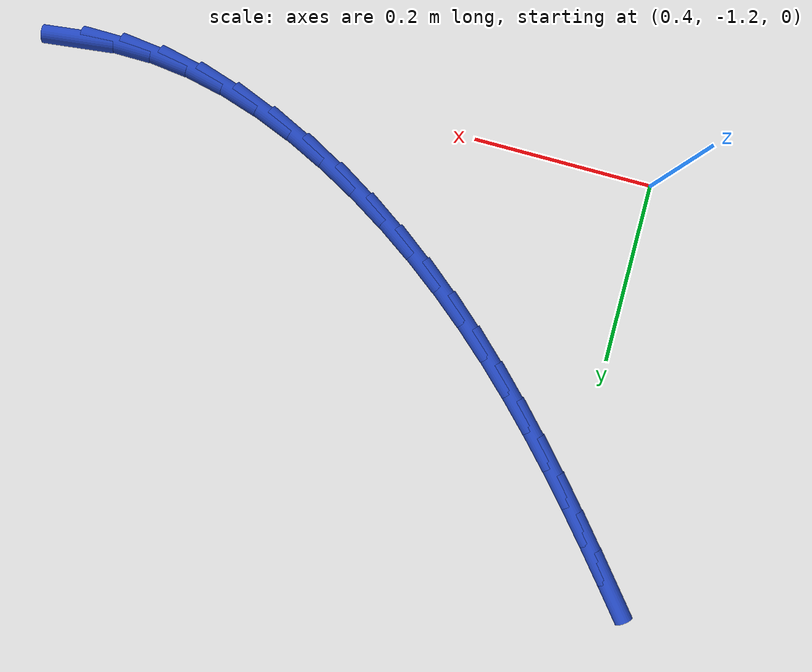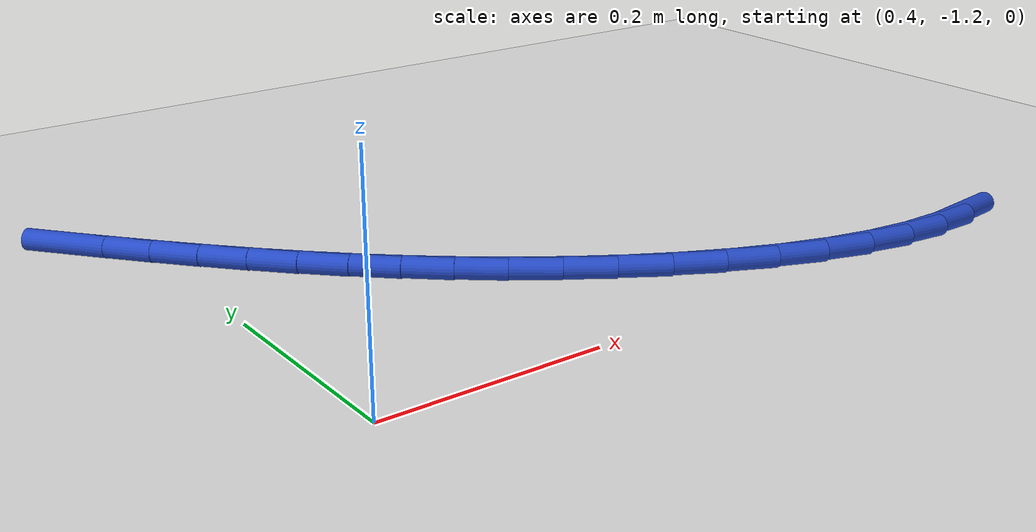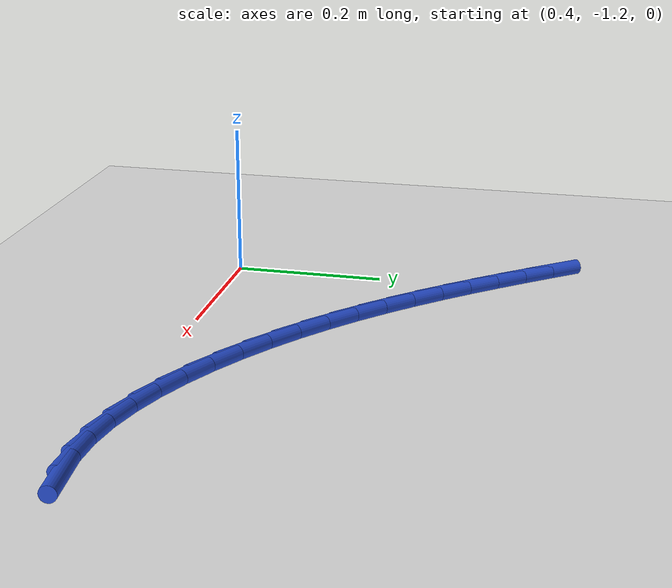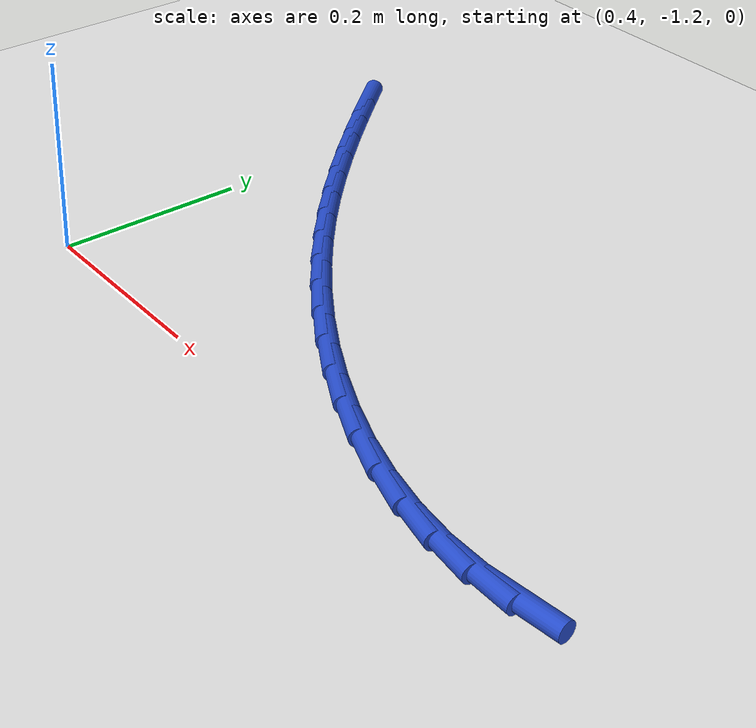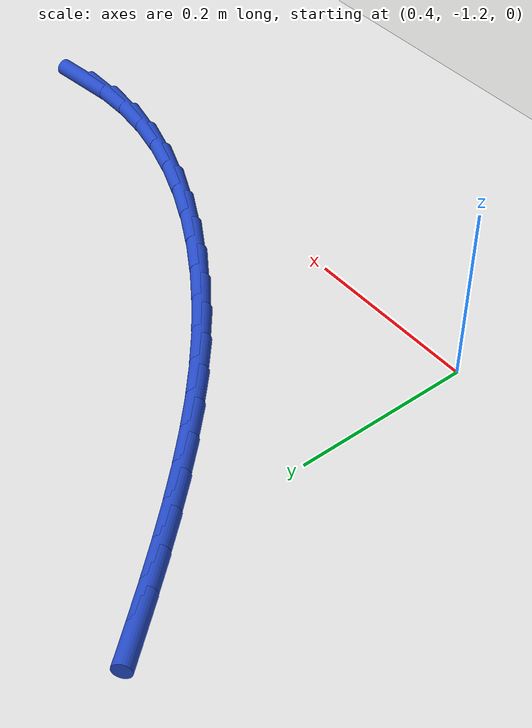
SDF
<sdf version="1.6">
 <world name="default">
  <model name="ground_plane">
   <static>1</static>
   <link name="link">
    <collision name="collision">
     <geometry><plane><normal>0 0 1</normal><size>100 100</size></plane></geometry>
     <surface><friction><ode><mu>100</mu><mu2>50</mu2></ode></friction></surface>
    </collision>
    <visual name="visual">
     <cast_shadows>0</cast_shadows>
     <geometry><plane><normal>0 0 1</normal><size>100 100</size></plane></geometry>
     <material>
      <script><uri>file://media/materials/scripts/gazebo.material</uri><name>Gazebo/WhiteGlow</name></script>
     </material>
    </visual>
   </link>
  </model>
  <model name="line">
   <link name="link_122">
    <pose>1.051353643007026 -1.192605715486204 0.01 0 1.57 0.11325673975671603</pose>
    <collision name="collision">
     <geometry><cylinder><radius>0.01</radius><length>0.08</length></cylinder></geometry>
    </collision>
    <visual name="visual">
     <material>
      <script><name>Gazebo/Blue</name><uri>file://media/materials/scripts/gazebo.material</uri></script>
     </material>
     <geometry><cylinder><radius>0.01</radius><length>0.08</length></cylinder></geometry>
    </visual>
   </link>
   <link name="link_123">
    <pose>1.0088203566418366 -1.197443599866201 0.01 0 1.57 -0.012909004410176127</pose>
    <collision name="collision">
     <geometry><cylinder><radius>0.01</radius><length>0.08</length></cylinder></geometry>
    </collision>
    <visual name="visual">
     <material>
      <script><name>Gazebo/Blue</name><uri>file://media/materials/scripts/gazebo.material</uri></script>
     </material>
     <geometry><cylinder><radius>0.01</radius><length>0.08</length></cylinder></geometry>
    </visual>
   </link>
   <link name="link_124">
    <pose>0.9655080422606135 -1.1968844499491333 0.01 0 1.57 -0.12635082770760625</pose>
    <collision name="collision">
     <geometry><cylinder><radius>0.01</radius><length>0.08</length></cylinder></geometry>
    </collision>
    <visual name="visual">
     <material>
      <script><name>Gazebo/Blue</name><uri>file://media/materials/scripts/gazebo.material</uri></script>
     </material>
     <geometry><cylinder><radius>0.01</radius><length>0.08</length></cylinder></geometry>
    </visual>
   </link>
   <link name="link_125">
    <pose>0.9216979448643812 -1.1913193616380249 0.01 0 1.57 -0.22517747321972656</pose>
    <collision name="collision">
     <geometry><cylinder><radius>0.01</radius><length>0.08</length></cylinder></geometry>
    </collision>
    <visual name="visual">
     <material>
      <script><name>Gazebo/Blue</name><uri>file://media/materials/scripts/gazebo.material</uri></script>
     </material>
     <geometry><cylinder><radius>0.01</radius><length>0.08</length></cylinder></geometry>
    </visual>
   </link>
   <link name="link_126">
    <pose>0.8777102852544838 -1.1812434538527654 0.01 0 1.57 -0.3109687670206483</pose>
    <collision name="collision">
     <geometry><cylinder><radius>0.01</radius><length>0.08</length></cylinder></geometry>
    </collision>
    <visual name="visual">
     <material>
      <script><name>Gazebo/Blue</name><uri>file://media/materials/scripts/gazebo.material</uri></script>
     </material>
     <geometry><cylinder><radius>0.01</radius><length>0.08</length></cylinder></geometry>
    </visual>
   </link>
   <link name="link_127">
    <pose>0.8338652842322672 -1.1671518455132457 0.01 0 1.57 -0.38564923800819434</pose>
    <collision name="collision">
     <geometry><cylinder><radius>0.01</radius><length>0.08</length></cylinder></geometry>
    </collision>
    <visual name="visual">
     <material>
      <script><name>Gazebo/Blue</name><uri>file://media/materials/scripts/gazebo.material</uri></script>
     </material>
     <geometry><cylinder><radius>0.01</radius><length>0.08</length></cylinder></geometry>
    </visual>
   </link>
   <link name="link_128">
    <pose>0.7904831625990756 -1.1495396555393558 0.01 0 1.57 -0.45114098690537335</pose>
    <collision name="collision">
     <geometry><cylinder><radius>0.01</radius><length>0.08</length></cylinder></geometry>
    </collision>
    <visual name="visual">
     <material>
      <script><name>Gazebo/Blue</name><uri>file://media/materials/scripts/gazebo.material</uri></script>
     </material>
     <geometry><cylinder><radius>0.01</radius><length>0.08</length></cylinder></geometry>
    </visual>
   </link>
   <link name="link_129">
    <pose>0.7478841411562536 -1.1289020028509866 0.01 0 1.57 -0.5092106275010904</pose>
    <collision name="collision">
     <geometry><cylinder><radius>0.01</radius><length>0.08</length></cylinder></geometry>
    </collision>
    <visual name="visual">
     <material>
      <script><name>Gazebo/Blue</name><uri>file://media/materials/scripts/gazebo.material</uri></script>
     </material>
     <geometry><cylinder><radius>0.01</radius><length>0.08</length></cylinder></geometry>
    </visual>
   </link>
   <link name="link_130">
    <pose>0.706388440705146 -1.1057340063680277 0.01 0 1.57 -0.5614318118736464</pose>
    <collision name="collision">
     <geometry><cylinder><radius>0.01</radius><length>0.08</length></cylinder></geometry>
    </collision>
    <visual name="visual">
     <material>
      <script><name>Gazebo/Blue</name><uri>file://media/materials/scripts/gazebo.material</uri></script>
     </material>
     <geometry><cylinder><radius>0.01</radius><length>0.08</length></cylinder></geometry>
    </visual>
   </link>
   <link name="link_131">
    <pose>0.6663162820470964 -1.0805307850103696 0.01 0 1.57 -0.6092527075161869</pose>
    <collision name="collision">
     <geometry><cylinder><radius>0.01</radius><length>0.08</length></cylinder></geometry>
    </collision>
    <visual name="visual">
     <material>
      <script><name>Gazebo/Blue</name><uri>file://media/materials/scripts/gazebo.material</uri></script>
     </material>
     <geometry><cylinder><radius>0.01</radius><length>0.08</length></cylinder></geometry>
    </visual>
   </link>
   <link name="link_132">
    <pose>0.6279636904437916 -1.053768074011626 0.01 0 1.57 -0.6540436209326852</pose>
    <collision name="collision">
     <geometry><cylinder><radius>0.01</radius><length>0.08</length></cylinder></geometry>
    </collision>
    <visual name="visual">
     <material>
      <script><name>Gazebo/Blue</name><uri>file://media/materials/scripts/gazebo.material</uri></script>
     </material>
     <geometry><cylinder><radius>0.01</radius><length>0.08</length></cylinder></geometry>
    </visual>
   </link>
   <link name="link_133">
    <pose>0.591347311475047 -1.0256977901586302 0.01 0 1.57 -0.6958694363511612</pose>
    <collision name="collision">
     <geometry><cylinder><radius>0.01</radius><length>0.08</length></cylinder></geometry>
    </collision>
    <visual name="visual">
     <material>
      <script><name>Gazebo/Blue</name><uri>file://media/materials/scripts/gazebo.material</uri></script>
     </material>
     <geometry><cylinder><radius>0.01</radius><length>0.08</length></cylinder></geometry>
    </visual>
   </link>
   <link name="link_134">
    <pose>0.5563044408012262 -0.9964281682777617 0.01 0 1.57 -0.7343172453509731</pose>
    <collision name="collision">
     <geometry><cylinder><radius>0.01</radius><length>0.08</length></cylinder></geometry>
    </collision>
    <visual name="visual">
     <material>
      <script><name>Gazebo/Blue</name><uri>file://media/materials/scripts/gazebo.material</uri></script>
     </material>
     <geometry><cylinder><radius>0.01</radius><length>0.08</length></cylinder></geometry>
    </visual>
   </link>
   <link name="link_135">
    <pose>0.5226694248731271 -0.9660650805056741 0.01 0 1.57 -0.7690507643356321</pose>
    <collision name="collision">
     <geometry><cylinder><radius>0.01</radius><length>0.08</length></cylinder></geometry>
    </collision>
    <visual name="visual">
     <material>
      <script><name>Gazebo/Blue</name><uri>file://media/materials/scripts/gazebo.material</uri></script>
     </material>
     <geometry><cylinder><radius>0.01</radius><length>0.08</length></cylinder></geometry>
    </visual>
   </link>
   <link name="link_136">
    <pose>0.4902766101415478 -0.9347143989790196 0.01 0 1.57 -0.7998134548307062</pose>
    <collision name="collision">
     <geometry><cylinder><radius>0.01</radius><length>0.08</length></cylinder></geometry>
    </collision>
    <visual name="visual">
     <material>
      <script><name>Gazebo/Blue</name><uri>file://media/materials/scripts/gazebo.material</uri></script>
     </material>
     <geometry><cylinder><radius>0.01</radius><length>0.08</length></cylinder></geometry>
    </visual>
   </link>
   <link name="link_137">
    <pose>0.45896034305728783 -0.9024819958344534 0.01 0 1.57 -0.8264211979779147</pose>
    <collision name="collision">
     <geometry><cylinder><radius>0.01</radius><length>0.08</length></cylinder></geometry>
    </collision>
    <visual name="visual">
     <material>
      <script><name>Gazebo/Blue</name><uri>file://media/materials/scripts/gazebo.material</uri></script>
     </material>
     <geometry><cylinder><radius>0.01</radius><length>0.08</length></cylinder></geometry>
    </visual>
   </link>
   <link name="link_138">
    <pose>0.4285549700711453 -0.8694737432086285 0.01 0 1.57 -0.8487518741471187</pose>
    <collision name="collision">
     <geometry><cylinder><radius>0.01</radius><length>0.08</length></cylinder></geometry>
    </collision>
    <visual name="visual">
     <material>
      <script><name>Gazebo/Blue</name><uri>file://media/materials/scripts/gazebo.material</uri></script>
     </material>
     <geometry><cylinder><radius>0.01</radius><length>0.08</length></cylinder></geometry>
    </visual>
   </link>
   <link name="link_139">
    <pose>0.39889483763391836 -0.8357955132381978 0.01 0 1.57 -0.8667337265601514</pose>
    <collision name="collision">
     <geometry><cylinder><radius>0.01</radius><length>0.08</length></cylinder></geometry>
    </collision>
    <visual name="visual">
     <material>
      <script><name>Gazebo/Blue</name><uri>file://media/materials/scripts/gazebo.material</uri></script>
     </material>
     <geometry><cylinder><radius>0.01</radius><length>0.08</length></cylinder></geometry>
    </visual>
   </link>
   <link name="link_140">
    <pose>0.36981429219640544 -0.8015531780598146 0.01 0 1.57 -0.8803340227826266</pose>
    <collision name="collision">
     <geometry><cylinder><radius>0.01</radius><length>0.08</length></cylinder></geometry>
    </collision>
    <visual name="visual">
     <material>
      <script><name>Gazebo/Blue</name><uri>file://media/materials/scripts/gazebo.material</uri></script>
     </material>
     <geometry><cylinder><radius>0.01</radius><length>0.08</length></cylinder></geometry>
    </visual>
   </link>
   <link name="link_141">
    <pose>0.3411476802094047 -0.7668526098101326 0.01 0 1.57 -0.8895490844956</pose>
    <collision name="collision">
     <geometry><cylinder><radius>0.01</radius><length>0.08</length></cylinder></geometry>
    </collision>
    <visual name="visual">
     <material>
      <script><name>Gazebo/Blue</name><uri>file://media/materials/scripts/gazebo.material</uri></script>
     </material>
     <geometry><cylinder><radius>0.01</radius><length>0.08</length></cylinder></geometry>
    </visual>
   </link>
  </model>
 </world>
</sdf>
